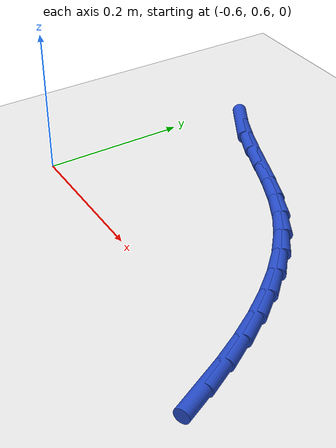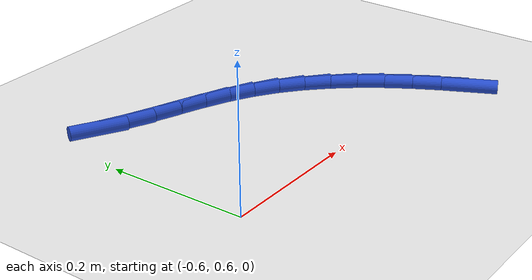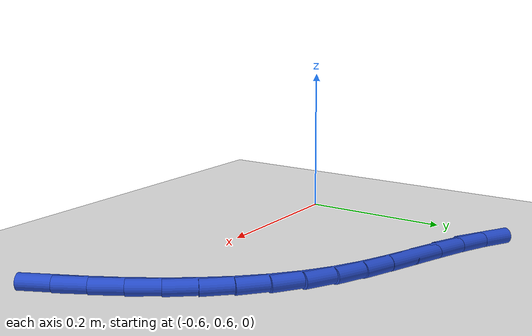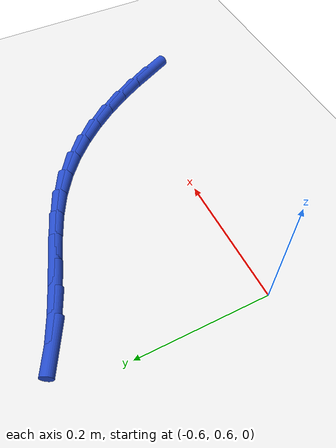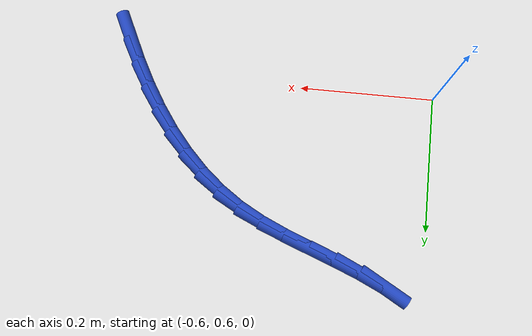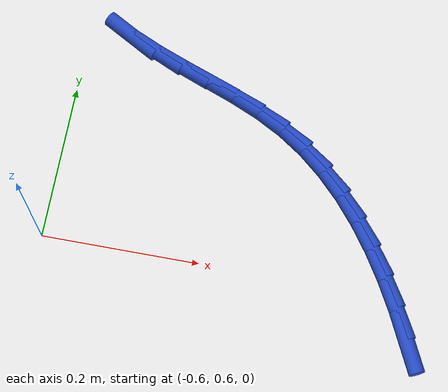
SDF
<sdf version="1.6">
 <world name="default">
  <model name="ground_plane">
   <static>1</static>
   <link name="link">
    <collision name="collision">
     <geometry><plane><normal>0 0 1</normal><size>100 100</size></plane></geometry>
     <surface><friction><ode><mu>100</mu><mu2>50</mu2></ode></friction></surface>
    </collision>
    <visual name="visual">
     <cast_shadows>0</cast_shadows>
     <geometry><plane><normal>0 0 1</normal><size>100 100</size></plane></geometry>
     <material>
      <script><uri>file://media/materials/scripts/gazebo.material</uri><name>Gazebo/WhiteGlow</name></script>
     </material>
    </visual>
   </link>
  </model>
  <model name="line">
   <link name="link_14">
    <pose>-0.13348712861547654 0.5468593138849668 0.01 0 1.57 -1.1236855883400392</pose>
    <collision name="collision">
     <geometry><cylinder><radius>0.01</radius><length>0.08</length></cylinder></geometry>
    </collision>
    <visual name="visual">
     <material>
      <script><name>Gazebo/Blue</name><uri>file://media/materials/scripts/gazebo.material</uri></script>
     </material>
     <geometry><cylinder><radius>0.01</radius><length>0.08</length></cylinder></geometry>
    </visual>
   </link>
   <link name="link_15">
    <pose>-0.15140214415177053 0.5842214484795485 0.01 0 1.57 -1.075386920775524</pose>
    <collision name="collision">
     <geometry><cylinder><radius>0.01</radius><length>0.08</length></cylinder></geometry>
    </collision>
    <visual name="visual">
     <material>
      <script><name>Gazebo/Blue</name><uri>file://media/materials/scripts/gazebo.material</uri></script>
     </material>
     <geometry><cylinder><radius>0.01</radius><length>0.08</length></cylinder></geometry>
    </visual>
   </link>
   <link name="link_16">
    <pose>-0.17085209816975627 0.6202161041152425 0.01 0 1.57 -1.0195376406558743</pose>
    <collision name="collision">
     <geometry><cylinder><radius>0.01</radius><length>0.08</length></cylinder></geometry>
    </collision>
    <visual name="visual">
     <material>
      <script><name>Gazebo/Blue</name><uri>file://media/materials/scripts/gazebo.material</uri></script>
     </material>
     <geometry><cylinder><radius>0.01</radius><length>0.08</length></cylinder></geometry>
    </visual>
   </link>
   <link name="link_17">
    <pose>-0.1919606048032897 0.6545479016683481 0.01 0 1.57 -0.9553349598616356</pose>
    <collision name="collision">
     <geometry><cylinder><radius>0.01</radius><length>0.08</length></cylinder></geometry>
    </collision>
    <visual name="visual">
     <material>
      <script><name>Gazebo/Blue</name><uri>file://media/materials/scripts/gazebo.material</uri></script>
     </material>
     <geometry><cylinder><radius>0.01</radius><length>0.08</length></cylinder></geometry>
    </visual>
   </link>
   <link name="link_18">
    <pose>-0.21485127818622693 0.6869214620151652 0.01 0 1.57 -0.8820342935948002</pose>
    <collision name="collision">
     <geometry><cylinder><radius>0.01</radius><length>0.08</length></cylinder></geometry>
    </collision>
    <visual name="visual">
     <material>
      <script><name>Gazebo/Blue</name><uri>file://media/materials/scripts/gazebo.material</uri></script>
     </material>
     <geometry><cylinder><radius>0.01</radius><length>0.08</length></cylinder></geometry>
    </visual>
   </link>
   <link name="link_19">
    <pose>-0.23964773245242377 0.7170414060319935 0.01 0 1.57 -0.7990947910628918</pose>
    <collision name="collision">
     <geometry><cylinder><radius>0.01</radius><length>0.08</length></cylinder></geometry>
    </collision>
    <visual name="visual">
     <material>
      <script><name>Gazebo/Blue</name><uri>file://media/materials/scripts/gazebo.material</uri></script>
     </material>
     <geometry><cylinder><radius>0.01</radius><length>0.08</length></cylinder></geometry>
    </visual>
   </link>
   <link name="link_20">
    <pose>-0.2664735817357364 0.744612354595132 0.01 0 1.57 -0.706385082721863</pose>
    <collision name="collision">
     <geometry><cylinder><radius>0.01</radius><length>0.08</length></cylinder></geometry>
    </collision>
    <visual name="visual">
     <material>
      <script><name>Gazebo/Blue</name><uri>file://media/materials/scripts/gazebo.material</uri></script>
     </material>
     <geometry><cylinder><radius>0.01</radius><length>0.08</length></cylinder></geometry>
    </visual>
   </link>
   <link name="link_21">
    <pose>-0.29545244017002037 0.7693389285808805 0.01 0 1.57 -0.6044279993705203</pose>
    <collision name="collision">
     <geometry><cylinder><radius>0.01</radius><length>0.08</length></cylinder></geometry>
    </collision>
    <visual name="visual">
     <material>
      <script><name>Gazebo/Blue</name><uri>file://media/materials/scripts/gazebo.material</uri></script>
     </material>
     <geometry><cylinder><radius>0.01</radius><length>0.08</length></cylinder></geometry>
    </visual>
   </link>
   <link name="link_22">
    <pose>-0.326707921889132 0.7909257488655386 0.01 0 1.57 -0.4981987468423412</pose>
    <collision name="collision">
     <geometry><cylinder><radius>0.01</radius><length>0.08</length></cylinder></geometry>
    </collision>
    <visual name="visual">
     <material>
      <script><name>Gazebo/Blue</name><uri>file://media/materials/scripts/gazebo.material</uri></script>
     </material>
     <geometry><cylinder><radius>0.01</radius><length>0.08</length></cylinder></geometry>
    </visual>
   </link>
   <link name="link_23">
    <pose>-0.36029703117814027 0.8091970808056621 0.01 0 1.57 -0.4160917837494246</pose>
    <collision name="collision">
     <geometry><cylinder><radius>0.01</radius><length>0.08</length></cylinder></geometry>
    </collision>
    <visual name="visual">
     <material>
      <script><name>Gazebo/Blue</name><uri>file://media/materials/scripts/gazebo.material</uri></script>
     </material>
     <geometry><cylinder><radius>0.01</radius><length>0.08</length></cylinder></geometry>
    </visual>
   </link>
   <link name="link_24">
    <pose>-0.3957767527798784 0.8248753238826917 0.01 0 1.57 -0.3695490540707796</pose>
    <collision name="collision">
     <geometry><cylinder><radius>0.01</radius><length>0.08</length></cylinder></geometry>
    </collision>
    <visual name="visual">
     <material>
      <script><name>Gazebo/Blue</name><uri>file://media/materials/scripts/gazebo.material</uri></script>
     </material>
     <geometry><cylinder><radius>0.01</radius><length>0.08</length></cylinder></geometry>
    </visual>
   </link>
   <link name="link_25">
    <pose>-0.4324768998260011 0.8390909227822458 0.01 0 1.57 -0.35681518918660643</pose>
    <collision name="collision">
     <geometry><cylinder><radius>0.01</radius><length>0.08</length></cylinder></geometry>
    </collision>
    <visual name="visual">
     <material>
      <script><name>Gazebo/Blue</name><uri>file://media/materials/scripts/gazebo.material</uri></script>
     </material>
     <geometry><cylinder><radius>0.01</radius><length>0.08</length></cylinder></geometry>
    </visual>
   </link>
   <link name="link_26">
    <pose>-0.46972614661818374 0.8529763677541273 0.01 0 1.57 -0.37671525680773915</pose>
    <collision name="collision">
     <geometry><cylinder><radius>0.01</radius><length>0.08</length></cylinder></geometry>
    </collision>
    <visual name="visual">
     <material>
      <script><name>Gazebo/Blue</name><uri>file://media/materials/scripts/gazebo.material</uri></script>
     </material>
     <geometry><cylinder><radius>0.01</radius><length>0.08</length></cylinder></geometry>
    </visual>
   </link>
   <link name="link_27">
    <pose>-0.5068531674581008 0.867664149048139 0.01 0 1.57 -0.429074436421221</pose>
    <collision name="collision">
     <geometry><cylinder><radius>0.01</radius><length>0.08</length></cylinder></geometry>
    </collision>
    <visual name="visual">
     <material>
      <script><name>Gazebo/Blue</name><uri>file://media/materials/scripts/gazebo.material</uri></script>
     </material>
     <geometry><cylinder><radius>0.01</radius><length>0.08</length></cylinder></geometry>
    </visual>
   </link>
   <link name="link_28">
    <pose>-0.5431866366474281 0.8842867569140839 0.01 0 1.57 -0.5140510791788202</pose>
    <collision name="collision">
     <geometry><cylinder><radius>0.01</radius><length>0.08</length></cylinder></geometry>
    </collision>
    <visual name="visual">
     <material>
      <script><name>Gazebo/Blue</name><uri>file://media/materials/scripts/gazebo.material</uri></script>
     </material>
     <geometry><cylinder><radius>0.01</radius><length>0.08</length></cylinder></geometry>
    </visual>
   </link>
  </model>
 </world>
</sdf>
